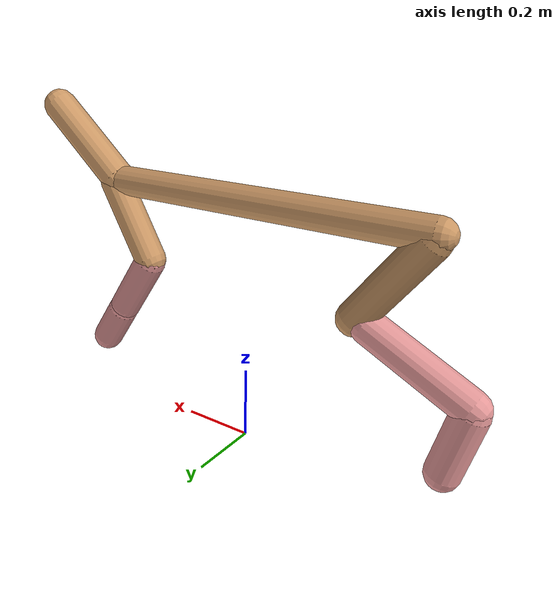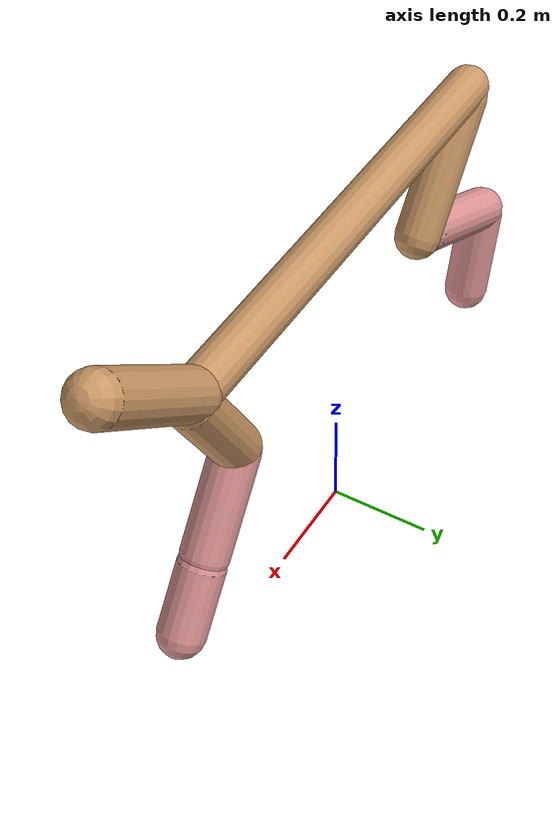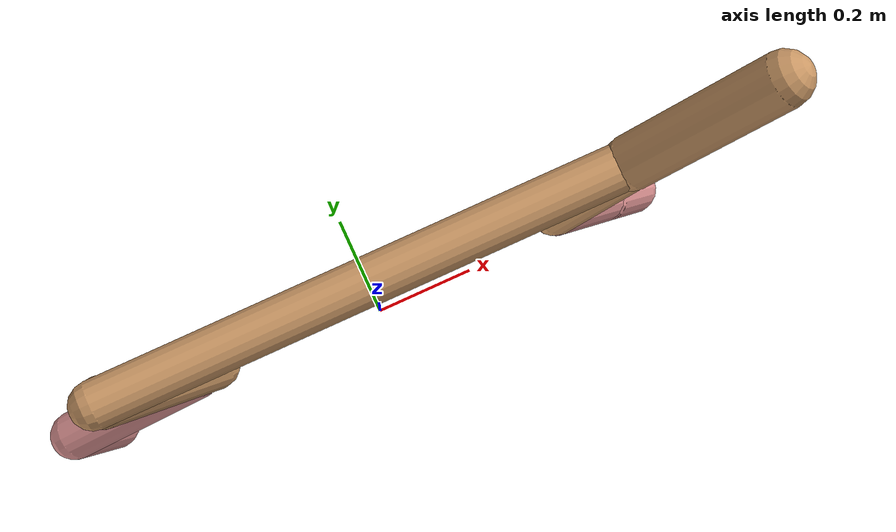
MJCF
<mujoco model="cheetah">
  <compiler angle="radian" coordinate="local" inertiafromgeom="true" settotalmass="14" />
  <default>
    <joint armature=".1" damping=".01" limited="true" solimplimit="0 .8 .03" solreflimit=".02 1" stiffness="8" />
    <geom conaffinity="0" condim="3" contype="1" friction="0.8 .1 .1" rgba="0.8 0.6 .4 1" solimp="0.0 0.8 0.01" solref="0.02 1" />
    <motor ctrllimited="true" ctrlrange="-1 1" />
  </default>
  <size nstack="300000" nuser_geom="1" />
  <option gravity="0 0 -9.81" timestep="0.01" />
  <worldbody>
    <body name="torso" pos="0.0 0.0 0.6792606706910101">
      <joint armature="0" axis="1 0 0" damping="0" limited="false" name="ignorex" pos="0 0 0" stiffness="0" type="slide" />
      <joint armature="0" axis="0 0 1" damping="0" limited="false" name="ignorez" pos="0 0 0" stiffness="0" type="slide" />
      <joint armature="0" axis="0 1 0" damping="0" limited="false" name="ignorey" pos="0 0 0" stiffness="0" type="hinge" />
      <geom fromto="-0.5 0.0 0.0 0.47097565724861107 0.0 0.0" name="torso" size="0.04190842487073245" type="capsule" />
      <geom axisangle="0 1 0 .87" name="head" pos="0.570975657248611 0.0 0.1" size="0.047747758329286745 0.15" type="capsule" />

      <body name="bthigh" pos="-.5 0 0">
        <joint axis="0 1 0" damping="6" name="bthigh" pos="0 0 0" range="-.52 1.05" stiffness="240" type="hinge" />
        <geom axisangle="0 1 0 -3.8" name="bthigh" pos="0.09844616620626102 0.0 -0.12798001606813933" size="0.0449739139691695 0.14245152309338685" type="capsule" />
        <body name="bshin" pos="0.15689233241252204 0.0 -0.24596003213627865">
          <joint axis="0 1 0" damping="4.5" name="bshin" pos="0 0 0" range="-.785 .785" stiffness="180" type="hinge" />
          <geom axisangle="0 1 0 -2.03" name="bshin" pos="-0.1376419720266447 0.0 -0.06882098601332234" rgba="0.9 0.6 0.6 1" size="0.0449739139691695 0.1473636445793657" type="capsule" />
          <body name="bfoot" pos="-0.2752839440532894 0.0 -0.1376419720266447">
            <joint axis="0 1 0" damping="3" name="bfoot" pos="0 0 0" range="-.4 .785" stiffness="120" type="hinge" />
            <geom axisangle="0 1 0 -.27" name="bfoot" pos="0.02951184972445375 0.0 -0.09542164744240046" rgba="0.9 0.6 0.6 1" size="0.0449739139691695 0.09234788393640252" type="capsule" />
            <inertial mass="10" />
          </body>
        </body>
      </body>
      <body name="fthigh" pos="0.470975657248611 0.0 0.0">
        <joint axis="0 1 0" damping="4.5" name="fthigh" pos="0 0 0" range="-1.5 0.8" stiffness="180" type="hinge" />
        <geom axisangle="0 1 0 .52" name="fthigh" pos="-0.06609414793634003 0.0 -0.11330425360515431" size="0.04534938605388607 0.12524830985350383" type="capsule" />
        <body name="fshin" pos="-0.13218829587268005 0.0 -0.22660850721030862">
          <joint axis="0 1 0" damping="3" name="fshin" pos="0 0 0" range="-1.2 1.1" stiffness="120" type="hinge" />
          <geom axisangle="0 1 0 -.6" name="fshin" pos="0.06138281666276089 0.0 -0.0849915923022843" rgba="0.9 0.6 0.6 1" size="0.04534938605388607 0.0998219612366271" type="capsule" />
          <body name="ffoot" pos="0.12276563332552178 0.0 -0.1699831846045686">
            <joint axis="0 1 0" damping="1.5" name="ffoot" pos="0 0 0" range="-3.1 -0.3" stiffness="60" type="hinge" />
            <geom axisangle="0 1 0 -.6" name="ffoot" pos="0.042793797214616916 0.0 -0.0665681290005152" rgba="0.9 0.6 0.6 1" size="0.04534938605388607 0.06592016308079149" type="capsule" />
            <inertial mass="10" />
          </body>
        </body>
      </body>
    </body>
  </worldbody>
  <actuator>
    <motor gear="120" joint="bthigh" name="bthigh" />
    <motor gear="90" joint="bshin" name="bshin" />
    <motor gear="60" joint="bfoot" name="bfoot" />
    <motor gear="120" joint="fthigh" name="fthigh" />
    <motor gear="60" joint="fshin" name="fshin" />
    <motor gear="30" joint="ffoot" name="ffoot" />
  </actuator>
</mujoco>
